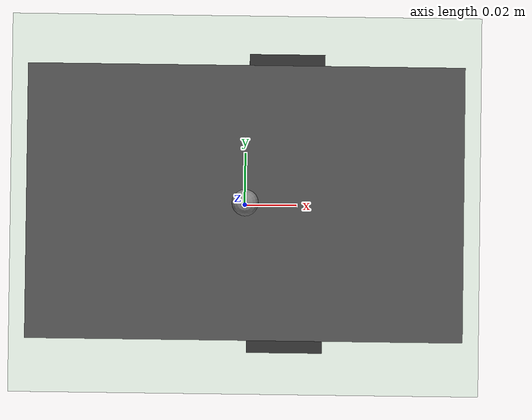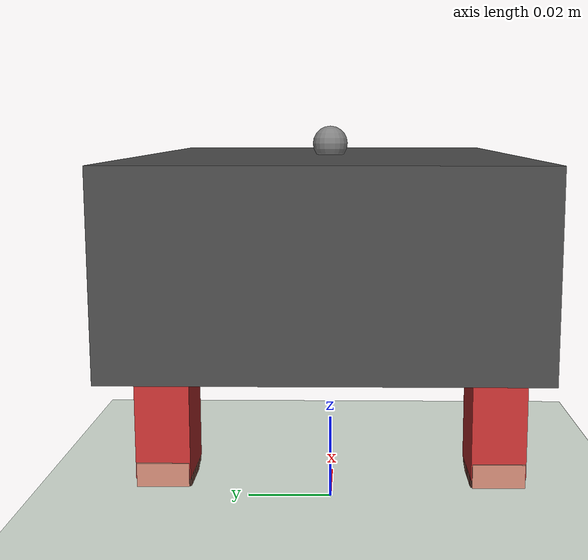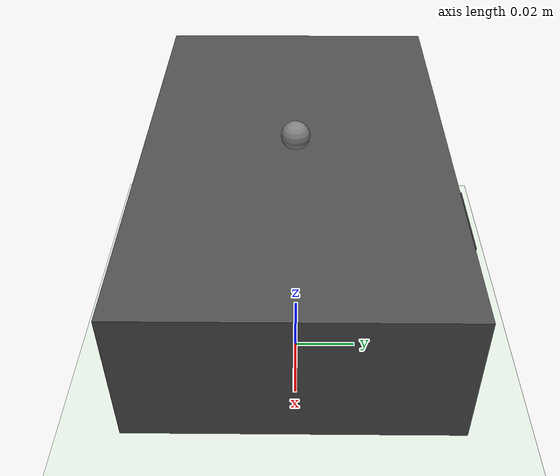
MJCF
<!-- Standalone MuJoCo XML updated from the v215 body for the current live GrowBot body, 2026-05-05. -->
<!-- Mass updated 2026-06-18: full BOM (Pi Zero + battery + electronics) = 243g total -->
<!--   base_body: 147g | leg_left: 48g | leg_right: 48g -->
<!-- Big measured geometry: body 132x83x39 mm; floor-to-body-bottom 44 mm; floor-to-servo-horn center 54 mm; legs 20 mm wide x 13.5 mm thick; IMU center 65 mm back from front at bottom shell. -->
<mujoco model="GrowBot_CurrentBody_20260505">
  <option gravity="0 0 -9.81" timestep="0.002000"/>
  <default>
    <geom solref="0.015 1" solimp="0.80 0.80 0.01" condim="3"/>
    <joint damping="0.040"/>
  </default>
  <worldbody>
    <geom name="floor" type="plane" size="2 2 0.1" rgba="0.88 0.92 0.88 1" friction="0.9500 0.1000 0.0500"/>

    <!-- VLM inspection cameras (added 2026-07-12) -->
    <!-- Side view: tracks robot from side at near-floor level; wide FOV shows floor contact and gait -->
    <camera name="side_view" mode="track" target="base_body"
            pos="0 -0.30 0.04" xyaxes="1 0 0  0 0.1 1" fovy="65"/>
    <!-- Rear quarter: slightly elevated behind-side view to catch yaw/spin -->
    <camera name="rear_quarter"
            pos="-0.20 -0.20 0.08" xyaxes="0.707 -0.707 0  0.15 0.15 1" fovy="65"/>
    <body name="base_body" pos="0 0 0.063500">
      <joint name="root_joint" type="free"/>
      <geom name="body_main" type="box" size="0.066000 0.041500 0.019500" pos="0 0 0" mass="0.116932" rgba="0.30 0.30 0.30 1"/>
      <!-- Servos mounted at leg attachment points — they drive the legs directly -->
      <geom name="servo_left" type="box" size="0.012 0.006 0.012" pos="0.013000 -0.041500 -0.008500" mass="0.015034" rgba="0.18 0.18 0.18 1"/>
      <geom name="servo_right" type="box" size="0.012 0.006 0.012" pos="0.013000 0.041500 -0.008500" mass="0.015034" rgba="0.18 0.18 0.18 1"/>
      <site name="imu_site" pos="0.001000 0 -0.019500" size="0.005"/>
      <site name="up_dir" pos="0 0 0.022" size="0.004"/>

      <body name="leg_left" pos="0.013000 -0.041500 -0.008500">
        <joint name="joint_left" type="hinge" axis="0 1 0" limited="true" range="-50 50"/>
        <geom name="leg_left_geom" type="box" size="0.010000 0.006750 0.026000" pos="0 0 -0.026000" mass="0.035989" rgba="0.80 0.20 0.20 1"/>
        <geom name="left_foot_seg_0" type="box" size="0.000742 0.006500 0.003000" pos="-0.009800 0.000000 -0.050845" mass="0.000801" rgba="0.82 0.54 0.46 1" friction="1.0000 0.1000 0.0500"/>
        <geom name="left_foot_seg_1" type="box" size="0.000742 0.006500 0.003000" pos="-0.008400 0.000000 -0.051162" mass="0.000801" rgba="0.82 0.54 0.46 1" friction="1.0000 0.1000 0.0500"/>
        <geom name="left_foot_seg_2" type="box" size="0.000742 0.006500 0.003000" pos="-0.007000 0.000000 -0.051616" mass="0.000801" rgba="0.82 0.54 0.46 1" friction="1.0000 0.1000 0.0500"/>
        <geom name="left_foot_seg_3" type="box" size="0.000742 0.006500 0.003000" pos="-0.005600 0.000000 -0.051946" mass="0.000801" rgba="0.82 0.54 0.46 1" friction="1.0000 0.1000 0.0500"/>
        <geom name="left_foot_seg_4" type="box" size="0.000742 0.006500 0.003000" pos="-0.004200 0.000000 -0.052000" mass="0.000801" rgba="0.82 0.54 0.46 1" friction="1.0000 0.1000 0.0500"/>
        <geom name="left_foot_seg_5" type="box" size="0.000742 0.006500 0.003000" pos="-0.002800 0.000000 -0.052000" mass="0.000801" rgba="0.82 0.54 0.46 1" friction="1.0000 0.1000 0.0500"/>
        <geom name="left_foot_seg_6" type="box" size="0.000742 0.006500 0.003000" pos="-0.001400 0.000000 -0.052000" mass="0.000801" rgba="0.82 0.54 0.46 1" friction="1.0000 0.1000 0.0500"/>
        <geom name="left_foot_seg_7" type="box" size="0.000742 0.006500 0.003000" pos="0.000000 0.000000 -0.052000" mass="0.000801" rgba="0.82 0.54 0.46 1" friction="1.0000 0.1000 0.0500"/>
        <geom name="left_foot_seg_8" type="box" size="0.000742 0.006500 0.003000" pos="0.001400 0.000000 -0.052000" mass="0.000801" rgba="0.82 0.54 0.46 1" friction="1.0000 0.1000 0.0500"/>
        <geom name="left_foot_seg_9" type="box" size="0.000742 0.006500 0.003000" pos="0.002800 0.000000 -0.052000" mass="0.000801" rgba="0.82 0.54 0.46 1" friction="1.0000 0.1000 0.0500"/>
        <geom name="left_foot_seg_10" type="box" size="0.000742 0.006500 0.003000" pos="0.004200 0.000000 -0.052000" mass="0.000801" rgba="0.82 0.54 0.46 1" friction="1.0000 0.1000 0.0500"/>
        <geom name="left_foot_seg_11" type="box" size="0.000742 0.006500 0.003000" pos="0.005600 0.000000 -0.051946" mass="0.000801" rgba="0.82 0.54 0.46 1" friction="1.0000 0.1000 0.0500"/>
        <geom name="left_foot_seg_12" type="box" size="0.000742 0.006500 0.003000" pos="0.007000 0.000000 -0.051616" mass="0.000801" rgba="0.82 0.54 0.46 1" friction="1.0000 0.1000 0.0500"/>
        <geom name="left_foot_seg_13" type="box" size="0.000742 0.006500 0.003000" pos="0.008400 0.000000 -0.051162" mass="0.000801" rgba="0.82 0.54 0.46 1" friction="1.0000 0.1000 0.0500"/>
        <geom name="left_foot_seg_14" type="box" size="0.000742 0.006500 0.003000" pos="0.009800 0.000000 -0.050845" mass="0.000801" rgba="0.82 0.54 0.46 1" friction="1.0000 0.1000 0.0500"/>
      </body>

      <body name="leg_right" pos="0.013000 0.041500 -0.008500">
        <joint name="joint_right" type="hinge" axis="0 1 0" limited="true" range="-50 50"/>
        <geom name="leg_right_geom" type="box" size="0.010000 0.006750 0.026000" pos="0 0 -0.026000" mass="0.035989" rgba="0.80 0.20 0.20 1"/>
        <geom name="right_foot_seg_0" type="box" size="0.000742 0.006500 0.003000" pos="-0.009800 0.000000 -0.050845" mass="0.000801" rgba="0.82 0.54 0.46 1" friction="1.0000 0.1000 0.0500"/>
        <geom name="right_foot_seg_1" type="box" size="0.000742 0.006500 0.003000" pos="-0.008400 0.000000 -0.051162" mass="0.000801" rgba="0.82 0.54 0.46 1" friction="1.0000 0.1000 0.0500"/>
        <geom name="right_foot_seg_2" type="box" size="0.000742 0.006500 0.003000" pos="-0.007000 0.000000 -0.051616" mass="0.000801" rgba="0.82 0.54 0.46 1" friction="1.0000 0.1000 0.0500"/>
        <geom name="right_foot_seg_3" type="box" size="0.000742 0.006500 0.003000" pos="-0.005600 0.000000 -0.051946" mass="0.000801" rgba="0.82 0.54 0.46 1" friction="1.0000 0.1000 0.0500"/>
        <geom name="right_foot_seg_4" type="box" size="0.000742 0.006500 0.003000" pos="-0.004200 0.000000 -0.052000" mass="0.000801" rgba="0.82 0.54 0.46 1" friction="1.0000 0.1000 0.0500"/>
        <geom name="right_foot_seg_5" type="box" size="0.000742 0.006500 0.003000" pos="-0.002800 0.000000 -0.052000" mass="0.000801" rgba="0.82 0.54 0.46 1" friction="1.0000 0.1000 0.0500"/>
        <geom name="right_foot_seg_6" type="box" size="0.000742 0.006500 0.003000" pos="-0.001400 0.000000 -0.052000" mass="0.000801" rgba="0.82 0.54 0.46 1" friction="1.0000 0.1000 0.0500"/>
        <geom name="right_foot_seg_7" type="box" size="0.000742 0.006500 0.003000" pos="0.000000 0.000000 -0.052000" mass="0.000801" rgba="0.82 0.54 0.46 1" friction="1.0000 0.1000 0.0500"/>
        <geom name="right_foot_seg_8" type="box" size="0.000742 0.006500 0.003000" pos="0.001400 0.000000 -0.052000" mass="0.000801" rgba="0.82 0.54 0.46 1" friction="1.0000 0.1000 0.0500"/>
        <geom name="right_foot_seg_9" type="box" size="0.000742 0.006500 0.003000" pos="0.002800 0.000000 -0.052000" mass="0.000801" rgba="0.82 0.54 0.46 1" friction="1.0000 0.1000 0.0500"/>
        <geom name="right_foot_seg_10" type="box" size="0.000742 0.006500 0.003000" pos="0.004200 0.000000 -0.052000" mass="0.000801" rgba="0.82 0.54 0.46 1" friction="1.0000 0.1000 0.0500"/>
        <geom name="right_foot_seg_11" type="box" size="0.000742 0.006500 0.003000" pos="0.005600 0.000000 -0.051946" mass="0.000801" rgba="0.82 0.54 0.46 1" friction="1.0000 0.1000 0.0500"/>
        <geom name="right_foot_seg_12" type="box" size="0.000742 0.006500 0.003000" pos="0.007000 0.000000 -0.051616" mass="0.000801" rgba="0.82 0.54 0.46 1" friction="1.0000 0.1000 0.0500"/>
        <geom name="right_foot_seg_13" type="box" size="0.000742 0.006500 0.003000" pos="0.008400 0.000000 -0.051162" mass="0.000801" rgba="0.82 0.54 0.46 1" friction="1.0000 0.1000 0.0500"/>
        <geom name="right_foot_seg_14" type="box" size="0.000742 0.006500 0.003000" pos="0.009800 0.000000 -0.050845" mass="0.000801" rgba="0.82 0.54 0.46 1" friction="1.0000 0.1000 0.0500"/>
      </body>
    </body>
  </worldbody>
  <sensor>
    <accelerometer name="acc" site="imu_site" noise="0.03" cutoff="30"/>
    <gyro name="gyro" site="imu_site" noise="0.01" cutoff="30"/>
    <jointpos name="left_pos" joint="joint_left"/>
    <jointpos name="right_pos" joint="joint_right"/>
    <jointvel name="left_vel" joint="joint_left"/>
    <jointvel name="right_vel" joint="joint_right"/>
    <framequat name="body_orientation" objtype="body" objname="base_body"/>
  </sensor>
  <actuator>
    <!-- SCS0009: 1.5 kg·cm @ 4.8V = 0.147 N·m stall torque; 375°/s max speed -->
    <!-- forcerange clamped to real servo capability; kv adds velocity damping -->
    <position name="servo_left" joint="joint_left" kp="0.8500" kv="0.02" forcerange="-0.15 0.15"/>
    <position name="servo_right" joint="joint_right" kp="0.8500" kv="0.02" forcerange="-0.15 0.15"/>
  </actuator>
</mujoco>
